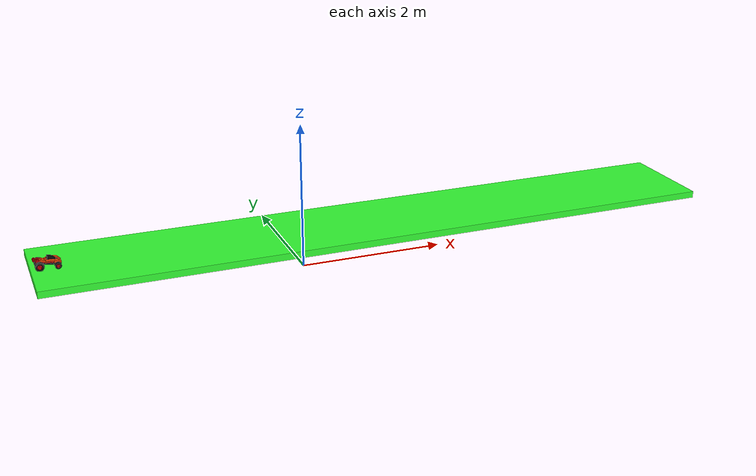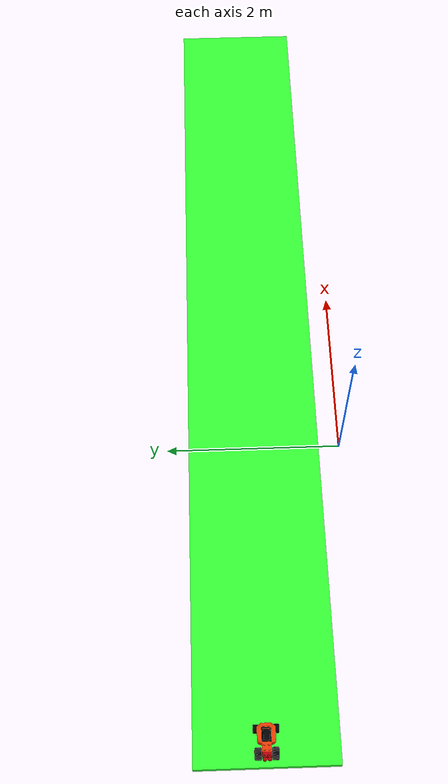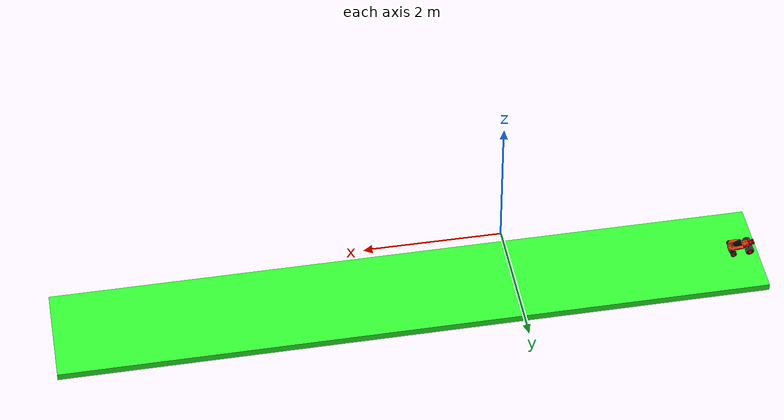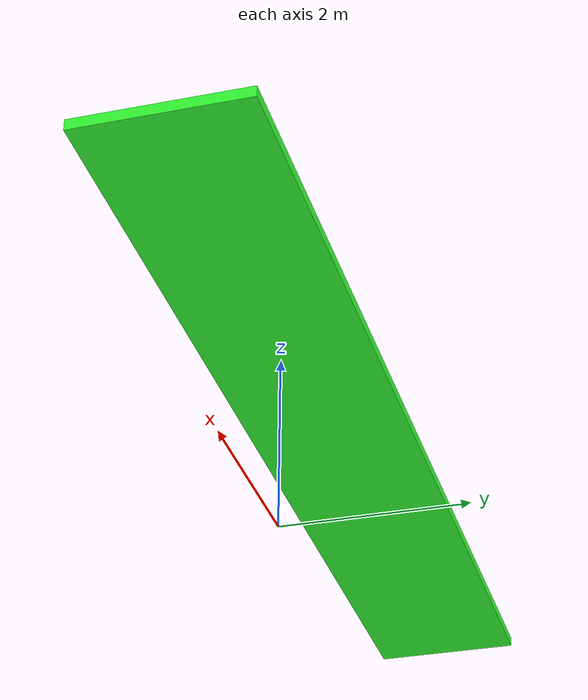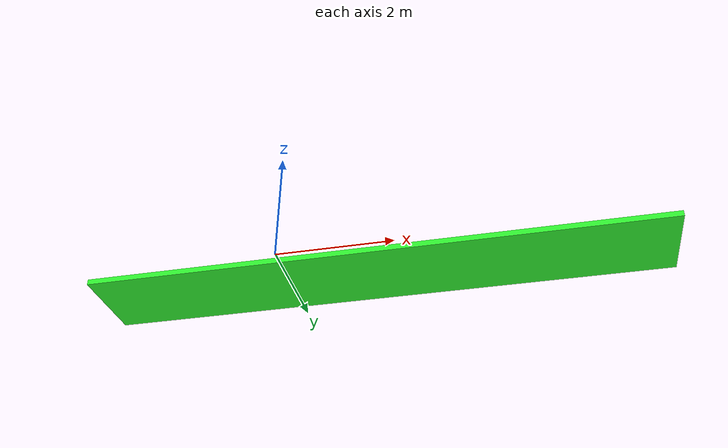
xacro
<?xml version="1.0"?>
<robot name="car" xmlns:xacro="http://www.ros.org/wiki/xacro">

  <xacro:include filename="car_include.xacro" />

  <!-- Empty link called World -->
  <link name="world"></link>

  <joint name="base_joint" type="fixed">
    <origin xyz="${base_joint_x} ${base_joint_y} ${base_joint_z}" rpy="0 0 0" />
    <parent link="world" />
    <child link="base_link" />
  </joint>

  <link name="base_link">
    <visual>
      <origin xyz="${base_link_x} ${base_link_y} ${base_link_z}" />
      <geometry>
        <box size="${base_link_length} ${base_link_width} ${base_link_height}" />
      </geometry>
      <material name="green">
        <color rgba="0.2 1 0.2 1" />
      </material>
    </visual>
    <collision>
      <origin xyz="${base_link_x} ${base_link_y} ${base_link_z}" rpy="0.0 0.0 0.0" />
      <geometry>
        <box size="${base_link_length} ${base_link_width} ${base_link_height}" />
      </geometry>
    </collision>
    <xacro:inertial_box mass="${base_link_mass}" x="${base_link_length}" y="${base_link_width}" z="${base_link_height}">
      <origin xyz="${base_link_x} ${base_link_y} ${base_link_z}" rpy="0.0 0.0 0.0" />
    </xacro:inertial_box>
  </link>

  <joint name="slider_joint" type="prismatic">
    <origin xyz="${slider_joint_x} ${slider_joint_y} ${slider_joint_z}" rpy="0 0 0" />
    <parent link="base_link" />
    <child link="slider_link" />
    <axis xyz="1 0 0" />
    <limit lower="0.0" upper="9" effort="100" velocity="100" />
  </joint>

  <link name="slider_link">
    <visual>
      <origin xyz="${slider_link_x_visual} ${slider_link_y_visual} ${slider_link_z_visual}" rpy="${pi/2} 0 ${pi/2}" />
      <geometry>
        <mesh filename="package://car_description/meshes/car.dae" scale="6 6 6" />
      </geometry>
    </visual>
    <collision>
      <origin xyz="${slider_link_x} ${slider_link_y} ${slider_link_z}" rpy="0 0 0" />
      <geometry>
        <box size="${slider_link_length} ${slider_link_width} ${slider_link_height}" />
      </geometry>
    </collision>
    <xacro:inertial_box mass="${slider_link_mass}" x="${slider_link_length}" y="${slider_link_width}" z="${slider_link_height}">
      <origin xyz="${slider_link_x} ${slider_link_y} ${slider_link_z}" rpy="0 0 0" />
    </xacro:inertial_box>

  </link>

</robot>

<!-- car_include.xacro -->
<robot xmlns:xacro="http://www.ros.org/wiki/xacro">

    <!-- Properites -->
    <!-- For base_link -->
    <xacro:property name="base_link_length" value="10" />
    <xacro:property name="base_link_width" value="1.5" />
    <xacro:property name="base_link_height" value="0.1" />
    <xacro:property name="base_link_x" value="0" />
    <xacro:property name="base_link_y" value="0" />
    <xacro:property name="base_link_z" value="0.05" />
    <xacro:property name="base_link_mass" value="12" />

    <!-- For base_joint -->
    <xacro:property name="base_joint_x" value="1.5" />
    <xacro:property name="base_joint_y" value="1.0" />
    <xacro:property name="base_joint_z" value="0" />

    <!-- For slider_link -->
    <xacro:property name="slider_link_length" value="0.38" />
    <xacro:property name="slider_link_width" value="0.25" />
    <xacro:property name="slider_link_height" value="0.15" />
    <xacro:property name="slider_link_x" value="0" />
    <xacro:property name="slider_link_y" value="0" />
    <xacro:property name="slider_link_z" value="0.13" />
    <xacro:property name="slider_link_mass" value="0.5" />
    <xacro:property name="slider_link_x_visual" value="0" />
    <xacro:property name="slider_link_y_visual" value="0.05" />
    <xacro:property name="slider_link_z_visual" value="0.075" />

    <!-- For slider_joint -->
    <xacro:property name="slider_joint_x" value="-4.8" />
    <xacro:property name="slider_joint_y" value="0" />
    <xacro:property name="slider_joint_z" value="0.04" />

    <!-- Inertia Tensor of Box -->
    <xacro:macro name="inertial_box"
        params="mass x y z *origin">
        <inertial>
            <xacro:insert_block name="origin" />
            <mass value="${mass}" />
            <inertia ixx="${(1/12) * mass * (y*y + z*z)}" ixy="0.0" ixz="0.0"
                iyy="${(1/12) * mass * (x*x + z*z)}" iyz="0.0"
                izz="${(1/12) * mass * (x*x + y*y)}" />
        </inertial>
    </xacro:macro>

</robot>
